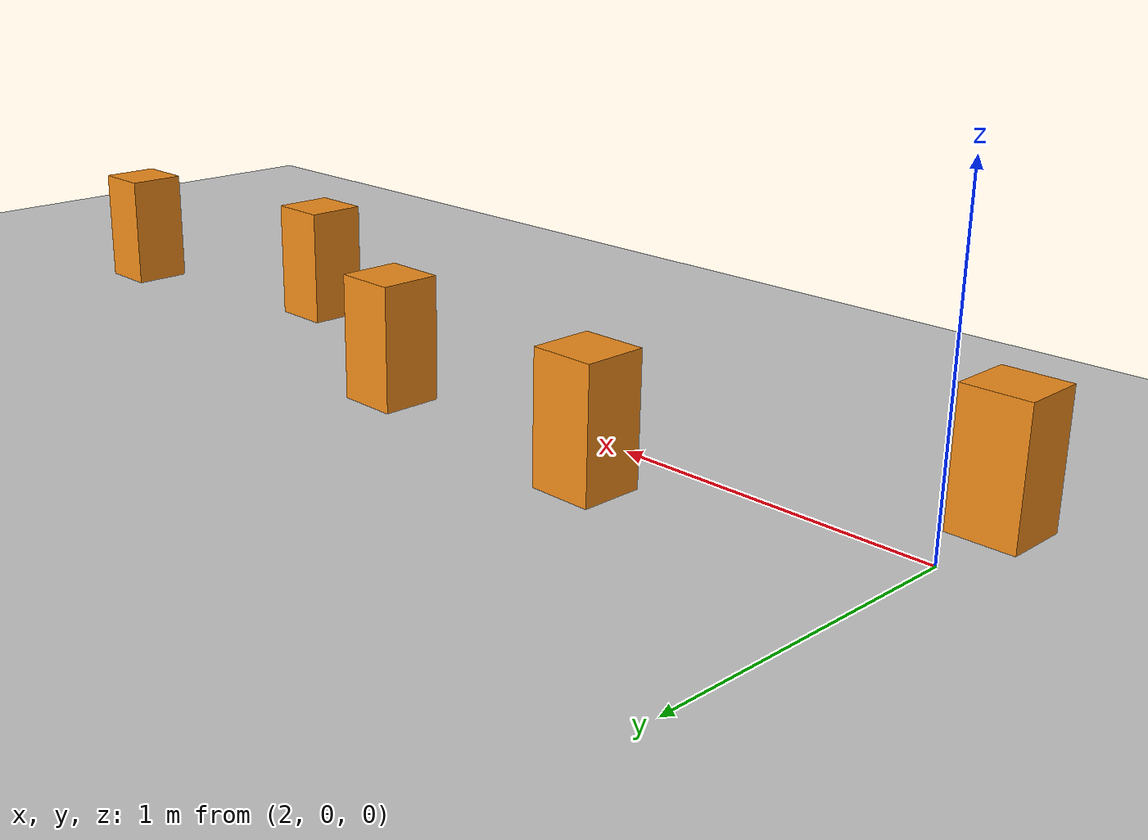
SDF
<?xml version="1.0" ?>
<!-- 由 omni_world.py 自动生成: scene=dynamic seed=1 -->
<sdf version="1.5">
  <world name="dynamic">
    <physics type="ode">
      <type>world</type>
      <max_step_size>0.001</max_step_size>
      <real_time_update_rate>1000</real_time_update_rate>
      <iters>500</iters>
    </physics>
    <include><uri>model://sun</uri></include>
    <include><uri>model://ground_plane</uri></include>
    <model name="dyn_box_0">
      <static>false</static>
      <pose>2.000 -0.293 0.200 0.0000 0.0000 0.0000</pose>
      <link name="link">
        <collision name="collision">
          <geometry><box><size>0.200 0.200 0.400</size></box></geometry>
          <surface><friction><ode><mu>0.6</mu><mu2>0.6</mu2></ode></friction></surface>
        </collision>
        <visual name="visual">
          <geometry><box><size>0.200 0.200 0.400</size></box></geometry>
          <material><script><uri>file://media/materials/scripts/gazebo.material</uri>
            <name>Gazebo/Orange</name></script></material>
        </visual>
      </link>
    </model>
    <model name="dyn_box_1">
      <static>false</static>
      <pose>2.900 0.278 0.200 0.0000 0.0000 0.0000</pose>
      <link name="link">
        <collision name="collision">
          <geometry><box><size>0.200 0.200 0.400</size></box></geometry>
          <surface><friction><ode><mu>0.6</mu><mu2>0.6</mu2></ode></friction></surface>
        </collision>
        <visual name="visual">
          <geometry><box><size>0.200 0.200 0.400</size></box></geometry>
          <material><script><uri>file://media/materials/scripts/gazebo.material</uri>
            <name>Gazebo/Orange</name></script></material>
        </visual>
      </link>
    </model>
    <model name="dyn_box_2">
      <static>false</static>
      <pose>3.800 0.211 0.200 0.0000 0.0000 0.0000</pose>
      <link name="link">
        <collision name="collision">
          <geometry><box><size>0.200 0.200 0.400</size></box></geometry>
          <surface><friction><ode><mu>0.6</mu><mu2>0.6</mu2></ode></friction></surface>
        </collision>
        <visual name="visual">
          <geometry><box><size>0.200 0.200 0.400</size></box></geometry>
          <material><script><uri>file://media/materials/scripts/gazebo.material</uri>
            <name>Gazebo/Orange</name></script></material>
        </visual>
      </link>
    </model>
    <model name="dyn_box_3">
      <static>false</static>
      <pose>4.700 -0.196 0.200 0.0000 0.0000 0.0000</pose>
      <link name="link">
        <collision name="collision">
          <geometry><box><size>0.200 0.200 0.400</size></box></geometry>
          <surface><friction><ode><mu>0.6</mu><mu2>0.6</mu2></ode></friction></surface>
        </collision>
        <visual name="visual">
          <geometry><box><size>0.200 0.200 0.400</size></box></geometry>
          <material><script><uri>file://media/materials/scripts/gazebo.material</uri>
            <name>Gazebo/Orange</name></script></material>
        </visual>
      </link>
    </model>
    <model name="dyn_box_4">
      <static>false</static>
      <pose>5.600 -0.004 0.200 0.0000 0.0000 0.0000</pose>
      <link name="link">
        <collision name="collision">
          <geometry><box><size>0.200 0.200 0.400</size></box></geometry>
          <surface><friction><ode><mu>0.6</mu><mu2>0.6</mu2></ode></friction></surface>
        </collision>
        <visual name="visual">
          <geometry><box><size>0.200 0.200 0.400</size></box></geometry>
          <material><script><uri>file://media/materials/scripts/gazebo.material</uri>
            <name>Gazebo/Orange</name></script></material>
        </visual>
      </link>
    </model>

  </world>
</sdf>
